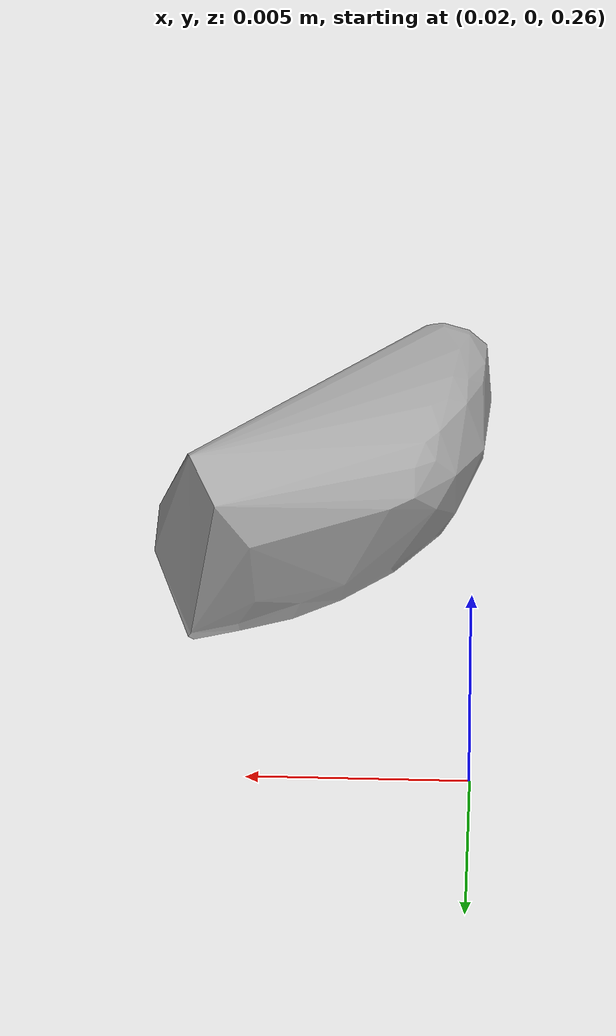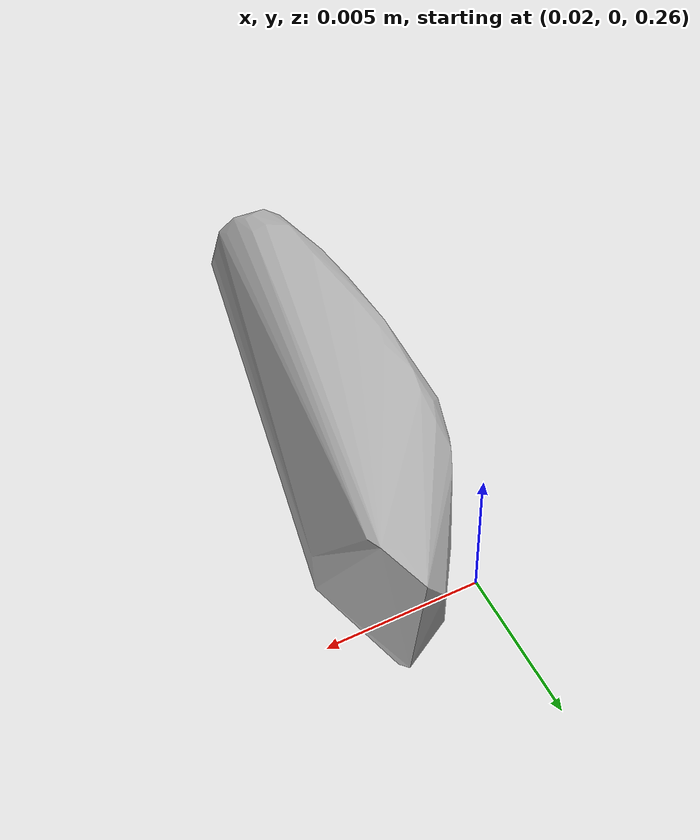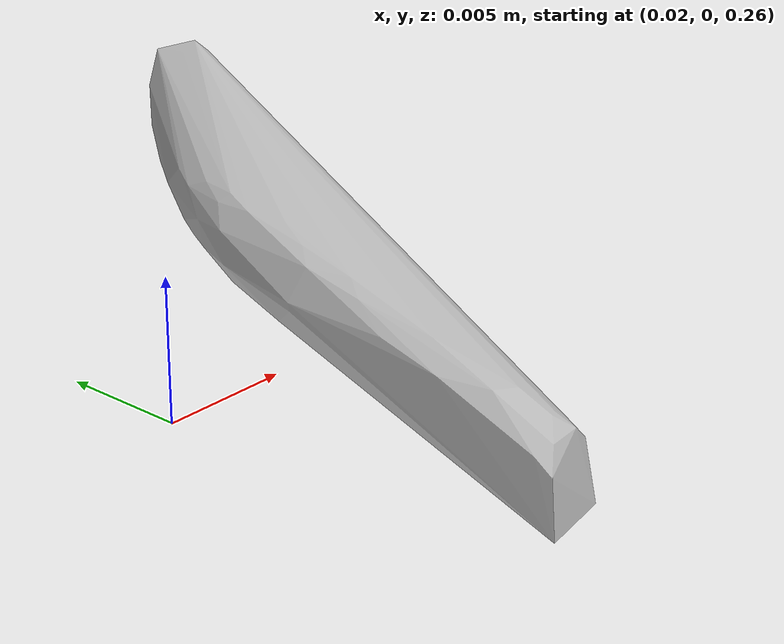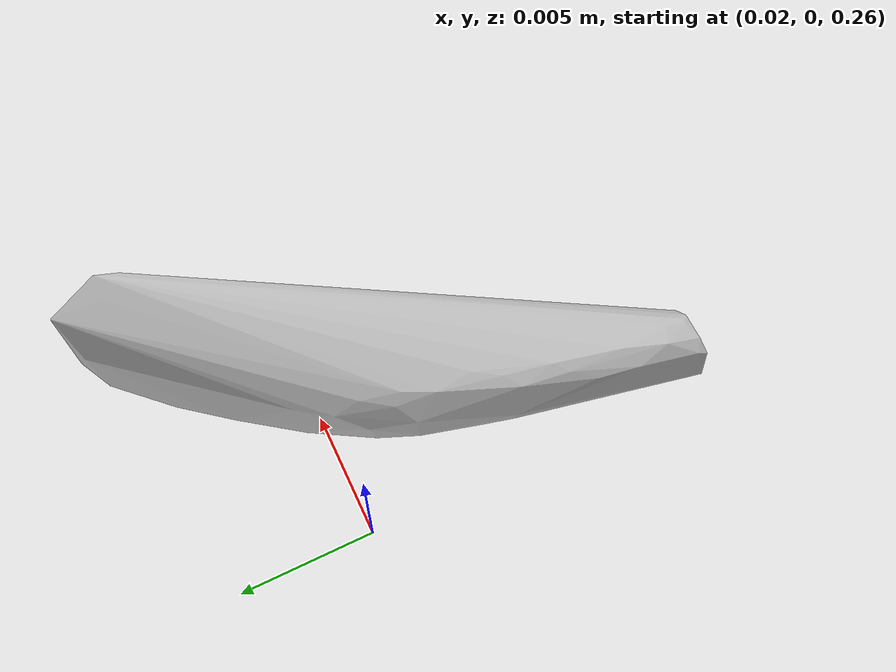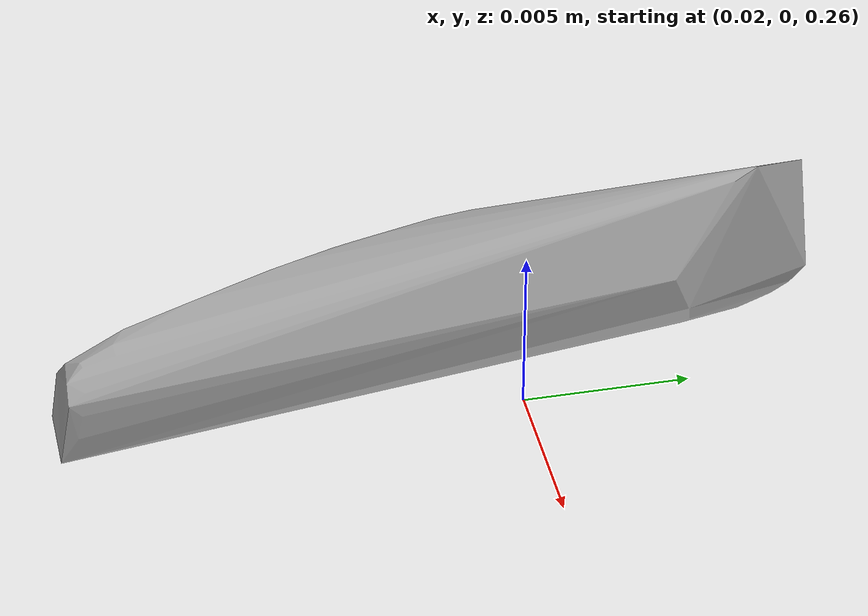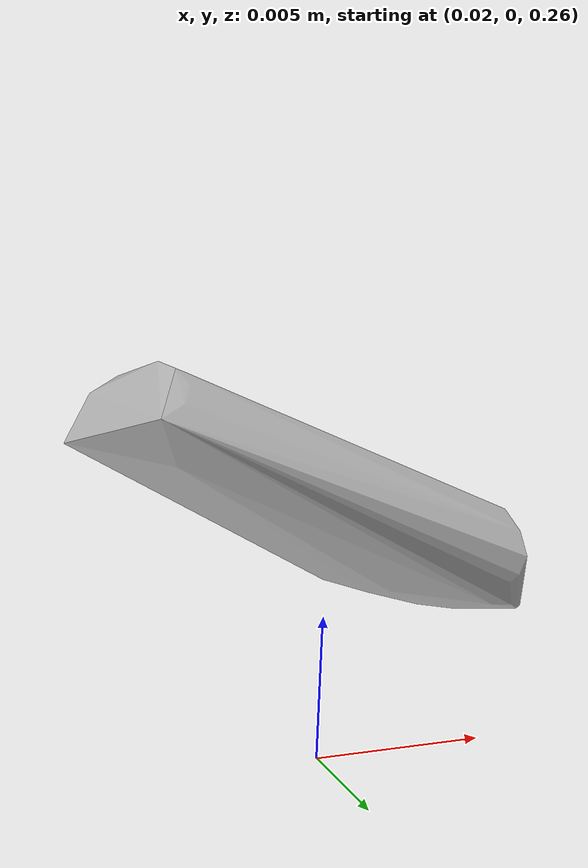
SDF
<?xml version="1.0"?>
<sdf version="1.7">
  <model name="vascular_partexport054">
    <link name="vascular_partexport054_body">
      <visual name="vascular_partexport054_visual">
        <geometry>
          <mesh>
            <uri>vascular_partexport054.obj</uri>
          </mesh>
        </geometry>
      </visual>
      <collision name="vascular_partexport054_collision">
        <geometry>
          <mesh>
            <uri>vascular_partexport054.obj</uri>
          </mesh>
        </geometry>
      </collision>
    </link>
    <frame name="vascular_partexport054_center">
      <pose relative_to="vascular_partexport054_body">0 0 0 0 0 0</pose>
    </frame>
  </model>
</sdf>
